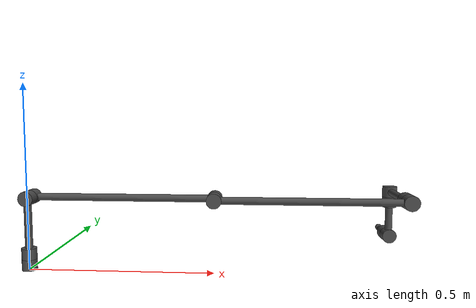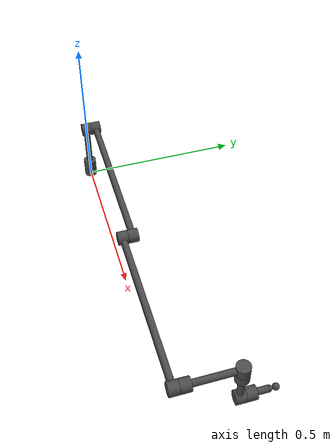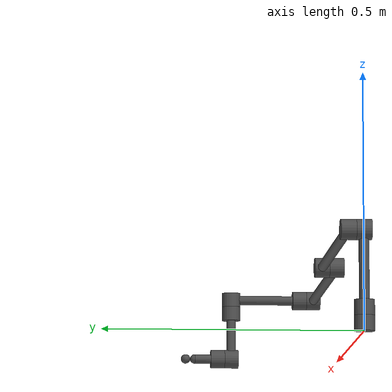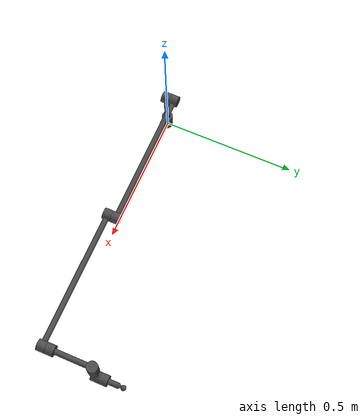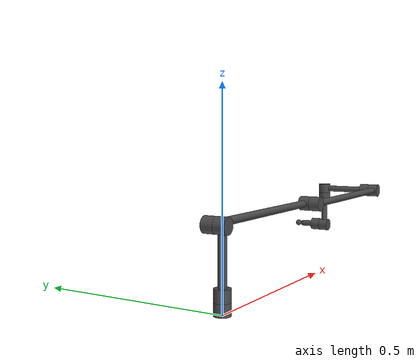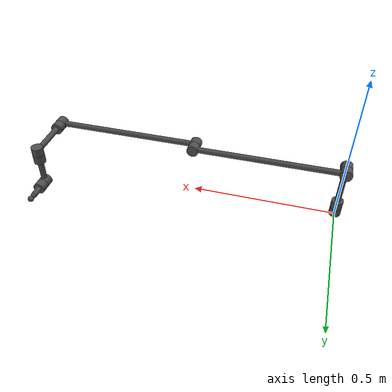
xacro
<?xml version="1.0"?>
<robot name="robot" xmlns:xacro="http://ros.org/wiki/xacro">

        <!--
        A fictitious robot model for testing purposes.
        The kinematics is roughly inspired by the universal robots ur10.
        -->

        <!-- joint properties -->
        <xacro:property name="joint_radius" value="0.02" />
        <xacro:property name="joint_length" value="0.03" />

        <!-- link properties -->
        <xacro:property name="link_radius" value="0.01" />
        <xacro:property name="link1_length" value="0.15" />
        <xacro:property name="link2_length" value="0.5" />
        <xacro:property name="link3_length" value="0.5" />
        <xacro:property name="link4_length" value="0.15" />
        <xacro:property name="link5_length" value="0.10" />
        <xacro:property name="link6_length" value="0.05" />

        <!-- colors -->
        <material name="grey">
                <color rgba="0.3 0.3 0.3 1.0"/>
        </material>

        <link name="base_link" >
                <visual name="joint">
                        <origin xyz="0 0 ${joint_length / 2.0}" rpy="0 0 0" />
                        <geometry>
                                <cylinder length="${joint_length}" radius="${joint_radius}"/>
                        </geometry>
                        <material name="grey"/>
                </visual>
        </link>

        <joint name="joint1" type="revolute">
                <parent link="base_link" />
                <child link = "link1" />
                <origin xyz="0.0 0.0 ${3.0 / 2.0 * joint_length}" rpy="0.0 0.0 0.0" />
                <axis xyz="0 0 1" />
                <limit lower="${-2.0 * pi}" upper="${2.0 * pi}" effort="1.0" velocity="10.0"/>
        </joint>

        <link name="link1">
                <visual name="joint1">
                        <origin xyz="0 0 0" rpy="0 0 0" />
                        <geometry>
                                <cylinder length="${joint_length}" radius="${joint_radius}"/>
                        </geometry>
                        <material name="grey"/>
                </visual>
                <visual name="link">
                        <origin xyz="0 0 ${link1_length / 2.0}" rpy="0 0 0" />
                        <geometry>
                                <cylinder length="${link1_length}" radius="${link_radius}"/>
                        </geometry>
                        <material name="grey"/>
                </visual>
                <visual name="joint2">
                        <origin xyz="0 0 ${link1_length}" rpy="${pi / 2.0} 0 0" />
                        <geometry>
                                <cylinder length="${joint_length}" radius="${joint_radius}"/>
                        </geometry>
                        <material name="grey"/>
                </visual>
        </link>

        <joint name="joint2" type="revolute">
                <parent link="link1" />
                <child link = "link2" />
                <origin xyz="0.0 ${joint_length} ${link1_length}" rpy="0.0 ${pi / 2.0} 0.0" />
                <axis xyz="0 1 0" />
                <limit lower="${-2.0 * pi}" upper="${2.0 * pi}" effort="1.0" velocity="10.0"/>
        </joint>

        <link name="link2">
                <visual name="joint2">
                        <origin xyz="0 0 0" rpy="${pi / 2.0} 0 0" />
                        <geometry>
                                <cylinder length="${joint_length}" radius="${joint_radius}"/>
                        </geometry>
                        <material name="grey"/>
                </visual>
                <visual name="link">
                        <origin xyz="0 0 ${link2_length / 2.0}" rpy="0 0 0" />
                        <geometry>
                                <cylinder length="${link2_length}" radius="${link_radius}"/>
                        </geometry>
                        <material name="grey"/>
                </visual>
                <visual name="joint3">
                        <origin xyz="0 0 ${link2_length}" rpy="${pi / 2.0} 0 0" />
                        <geometry>
                                <cylinder length="${joint_length}" radius="${joint_radius}"/>
                        </geometry>
                        <material name="grey"/>
                </visual>
        </link>

        <joint name="joint3" type="revolute">
                <parent link="link2" />
                <child link = "link3" />
                <origin xyz="0.0 -${joint_length} ${link2_length}" rpy="0.0 0.0 0.0" />
                <axis xyz="0 1 0" />
                <limit lower="${-pi}" upper="${pi}" effort="1.0" velocity="10.0"/>
        </joint>

        <link name="link3">
                <visual name="joint3">
                        <origin xyz="0 0 0" rpy="${pi / 2.0} 0 0" />
                        <geometry>
                                <cylinder length="${joint_length}" radius="${joint_radius}"/>
                        </geometry>
                        <material name="grey"/>
                </visual>
                <visual name="link">
                        <origin xyz="0 0 ${link3_length / 2.0}" rpy="0 0 0" />
                        <geometry>
                                <cylinder length="${link3_length}" radius="${link_radius}"/>
                        </geometry>
                        <material name="grey"/>
                </visual>
                <visual name="joint4">
                        <origin xyz="0 0 ${link3_length}" rpy="${pi / 2.0} 0 0" />
                        <geometry>
                                <cylinder length="${joint_length}" radius="${joint_radius}"/>
                        </geometry>
                        <material name="grey"/>
                </visual>
        </link>

        <joint name="joint4" type="revolute">
                <parent link="link3" />
                <child link = "link4" />
                <origin xyz="0.0 ${joint_length} ${link3_length}" rpy="0.0 ${pi / 2.0} 0.0" />
                <axis xyz="0 1 0" />
                <limit lower="${-2.0 * pi}" upper="${2.0 * pi}" effort="1.0" velocity="10.0"/>
        </joint>

        <link name="link4">
                <visual name="joint4">
                        <origin xyz="0 0 0" rpy="${pi / 2.0} 0 0" />
                        <geometry>
                                <cylinder length="${joint_length}" radius="${joint_radius}"/>
                        </geometry>
                        <material name="grey"/>
                </visual>
                <visual name="link">
                        <origin xyz="0 ${link4_length / 2.0} 0" rpy="${pi / 2.0} 0 0" />
                        <geometry>
                                <cylinder length="${link4_length}" radius="${link_radius}"/>
                        </geometry>
                        <material name="grey"/>
                </visual>
                <visual name="joint5">
                        <origin xyz="0 ${link4_length} 0" rpy="0 0 0" />
                        <geometry>
                                <cylinder length="${joint_length}" radius="${joint_radius}"/>
                        </geometry>
                        <material name="grey"/>
                </visual>
        </link>

        <joint name="joint5" type="revolute">
                <parent link="link4" />
                <child link = "link5" />
                <origin xyz="0.0 ${link4_length} ${joint_length}" rpy="0.0 0.0 0.0" />
                <axis xyz="0 0 1" />
                <limit lower="${-2.0 * pi}" upper="${2.0 * pi}" effort="1.0" velocity="10.0"/>
        </joint>

        <link name="link5">
                <visual name="joint5">
                        <origin xyz="0 0 0" rpy="0 0 0" />
                        <geometry>
                                <cylinder length="${joint_length}" radius="${joint_radius}"/>
                        </geometry>
                        <material name="grey"/>
                </visual>
                <visual name="link">
                        <origin xyz="0 0 ${link5_length / 2.0}" rpy="0 0 0" />
                        <geometry>
                                <cylinder length="${link5_length}" radius="${link_radius}"/>
                        </geometry>
                        <material name="grey"/>
                </visual>
                <visual name="joint6">
                        <origin xyz="0 0 ${link5_length}" rpy="${pi / 2.0} 0 0" />
                        <geometry>
                                <cylinder length="${joint_length}" radius="${joint_radius}"/>
                        </geometry>
                        <material name="grey"/>
                </visual>
        </link>

        <joint name="joint6" type="revolute">
                <parent link="link5" />
                <child link = "link6" />
                <origin xyz="0.0 ${joint_length} ${link5_length}" rpy="0.0 0.0 0.0" />
                <axis xyz="0 1 0" />
                <limit lower="${-2.0 * pi}" upper="${2.0 * pi}" effort="1.0" velocity="10.0"/>
        </joint>

        <link name="link6">
                <visual name="joint6">
                        <origin xyz="0 0 0" rpy="${pi / 2.0} 0 0" />
                        <geometry>
                                <cylinder length="${joint_length}" radius="${joint_radius}"/>
                        </geometry>
                        <material name="grey"/>
                </visual>
                <visual name="link">
                        <origin xyz="0 ${link6_length / 2.0} 0" rpy="${-pi / 2.0} 0 0" />
                        <geometry>
                                <cylinder length="${link6_length}" radius="${link_radius}"/>
                        </geometry>
                        <material name="grey"/>
                </visual>
        </link>

        <joint name="tool0_joint" type="fixed">
                <origin xyz="0 ${link6_length} 0" rpy="${-pi / 2.0} 0 0"/>
                <parent link="link6"/>
                <child link="tool0"/>
        </joint>
        <link name="tool0">
                <visual>
                        <origin xyz="0 0 0" rpy="0 0 0" />
                        <geometry>
                                <sphere radius="${link_radius}"/>
                        </geometry>
                        <material name="grey"/>
                </visual>
        </link>

        <!-- Link for easy space mouse control -->
        <joint name="space_mouse_joint" type="fixed">
                <origin xyz="0 0 0.02" rpy="${-pi / 2.0} ${pi / 2.0} 0"/>
                <parent link="tool0"/>
                <child link="space_mouse"/>
        </joint>
        <link name="space_mouse">
                <visual>
                        <origin xyz="0 0 0" rpy="0 0 0" />
                        <geometry>
                                <sphere radius="${link_radius}"/>
                        </geometry>
                        <material name="grey"/>
                </visual>
        </link>

        <!-- Attach a sensor link -->
        <joint name="sensor_link_joint" type="fixed">
                <origin xyz="0 ${link6_length / 2.0} 0" rpy="${-pi / 2.0} 0 ${pi / 2.0}"/>
                <parent link="link6"/>
                <child link="sensor_link"/>
        </joint>
        <link name="sensor_link"/>

        <!-- Connect to world -->
        <link name="world" />
        <joint name="world_joint" type="fixed">
                <parent link="world" />
                <child link = "base_link" />
                <origin xyz="0.0 0.0 0.0" rpy="0.0 0.0 0.0" />
        </joint>

</robot>
